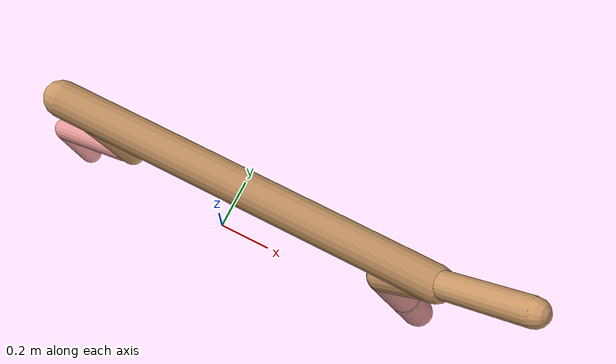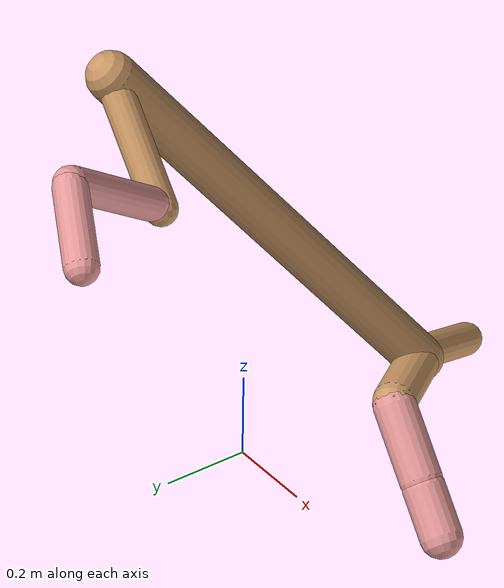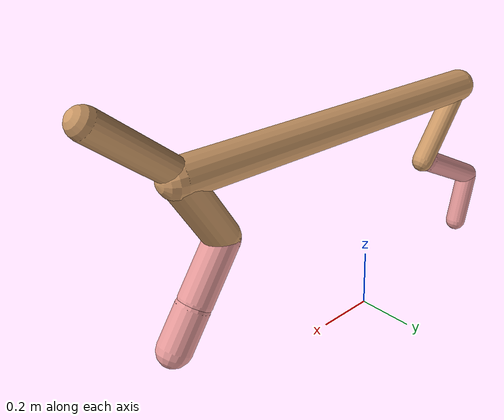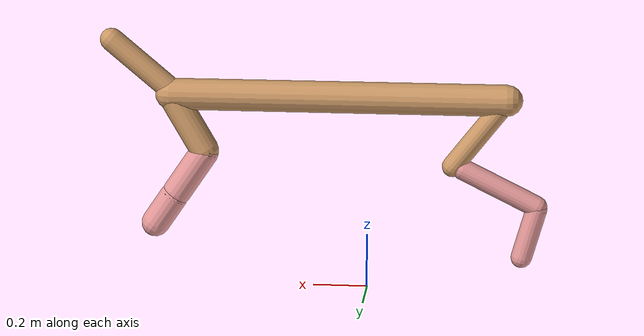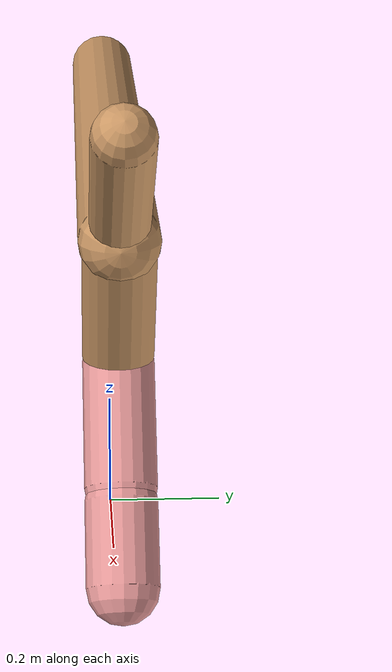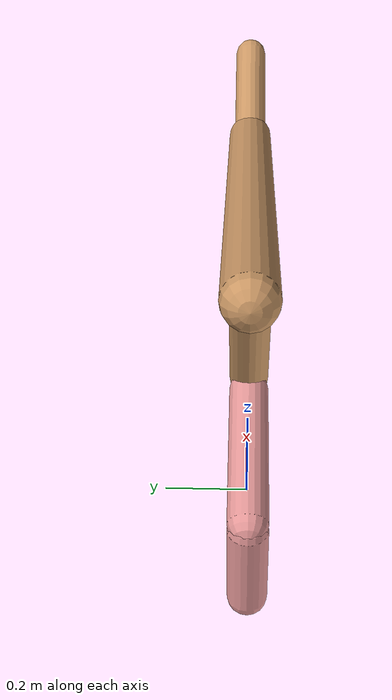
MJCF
<mujoco model="cheetah">
  <compiler angle="radian" coordinate="local" inertiafromgeom="true" settotalmass="14" />
  <default>
    <joint armature=".1" damping=".01" limited="true" solimplimit="0 .8 .03" solreflimit=".02 1" stiffness="8" />
    <geom conaffinity="0" condim="3" contype="1" friction="0.8 .1 .1" rgba="0.8 0.6 .4 1" solimp="0.0 0.8 0.01" solref="0.02 1" />
    <motor ctrllimited="true" ctrlrange="-1 1" />
  </default>
  <size nstack="300000" nuser_geom="1" />
  <option gravity="0 0 -9.81" timestep="0.01" />
  <worldbody>
    <body name="torso" pos="0.0 0.0 0.7141799289914138">
      <joint armature="0" axis="1 0 0" damping="0" limited="false" name="ignorex" pos="0 0 0" stiffness="0" type="slide" />
      <joint armature="0" axis="0 0 1" damping="0" limited="false" name="ignorez" pos="0 0 0" stiffness="0" type="slide" />
      <joint armature="0" axis="0 1 0" damping="0" limited="false" name="ignorey" pos="0 0 0" stiffness="0" type="hinge" />
      <geom fromto="-0.5 0.0 0.0 0.7204487803807914 0.0 0.0" name="torso" size="0.05754214425184928" type="capsule" />
      <geom axisangle="0 1 0 .87" name="head" pos="0.8204487803807913 0.0 0.1" size="0.04238016036409568 0.15" type="capsule" />

      <body name="bthigh" pos="-.5 0 0">
        <joint axis="0 1 0" damping="6" name="bthigh" pos="0 0 0" range="-.52 1.05" stiffness="240" type="hinge" />
        <geom axisangle="0 1 0 -3.8" name="bthigh" pos="0.10106238984546753 0.0 -0.1313811067991078" size="0.038754759931813945 0.14674244890148727" type="capsule" />
        <body name="bshin" pos="0.16212477969093506 0.0 -0.2527622135982156">
          <joint axis="0 1 0" damping="4.5" name="bshin" pos="0 0 0" range="-.785 .785" stiffness="180" type="hinge" />
          <geom axisangle="0 1 0 -2.03" name="bshin" pos="-0.141612234837674 0.0 -0.070806117418837" rgba="0.9 0.6 0.6 1" size="0.038754759931813945 0.15180253334636615" type="capsule" />
          <body name="bfoot" pos="-0.283224469675348 0.0 -0.141612234837674">
            <joint axis="0 1 0" damping="3" name="bfoot" pos="0 0 0" range="-.4 .785" stiffness="120" type="hinge" />
            <geom axisangle="0 1 0 -.27" name="bfoot" pos="0.03033375892446939 0.0 -0.09807915385578436" rgba="0.9 0.6 0.6 1" size="0.038754759931813945 0.09512958756372279" type="capsule" />
            <inertial mass="10" />
          </body>
        </body>
      </body>
      <body name="fthigh" pos="0.7204487803807913 0.0 0.0">
        <joint axis="0 1 0" damping="4.5" name="fthigh" pos="0 0 0" range="-1.5 0.8" stiffness="180" type="hinge" />
        <geom axisangle="0 1 0 .52" name="fthigh" pos="-0.06239763780523524 0.0 -0.10696737909468897" size="0.0524228510061041 0.11791208700310282" type="capsule" />
        <body name="fshin" pos="-0.12479527561047048 0.0 -0.21393475818937793">
          <joint axis="0 1 0" damping="3" name="fshin" pos="0 0 0" range="-1.2 1.1" stiffness="120" type="hinge" />
          <geom axisangle="0 1 0 -.6" name="fshin" pos="0.05795950348186214 0.0 -0.08025162020565527" rgba="0.9 0.6 0.6 1" size="0.0524228510061041 0.09397504678442781" type="capsule" />
          <body name="ffoot" pos="0.11591900696372429 0.0 -0.16050324041131053">
            <joint axis="0 1 0" damping="1.5" name="ffoot" pos="0 0 0" range="-3.1 -0.3" stiffness="60" type="hinge" />
            <geom axisangle="0 1 0 -.6" name="ffoot" pos="0.04070584026834224 0.0 -0.06332019597297682" rgba="0.9 0.6 0.6 1" size="0.0524228510061041 0.06205899315952781" type="capsule" />
            <inertial mass="10" />
          </body>
        </body>
      </body>
    </body>
  </worldbody>
  <actuator>
    <motor gear="120" joint="bthigh" name="bthigh" />
    <motor gear="90" joint="bshin" name="bshin" />
    <motor gear="60" joint="bfoot" name="bfoot" />
    <motor gear="120" joint="fthigh" name="fthigh" />
    <motor gear="60" joint="fshin" name="fshin" />
    <motor gear="30" joint="ffoot" name="ffoot" />
  </actuator>
</mujoco>
